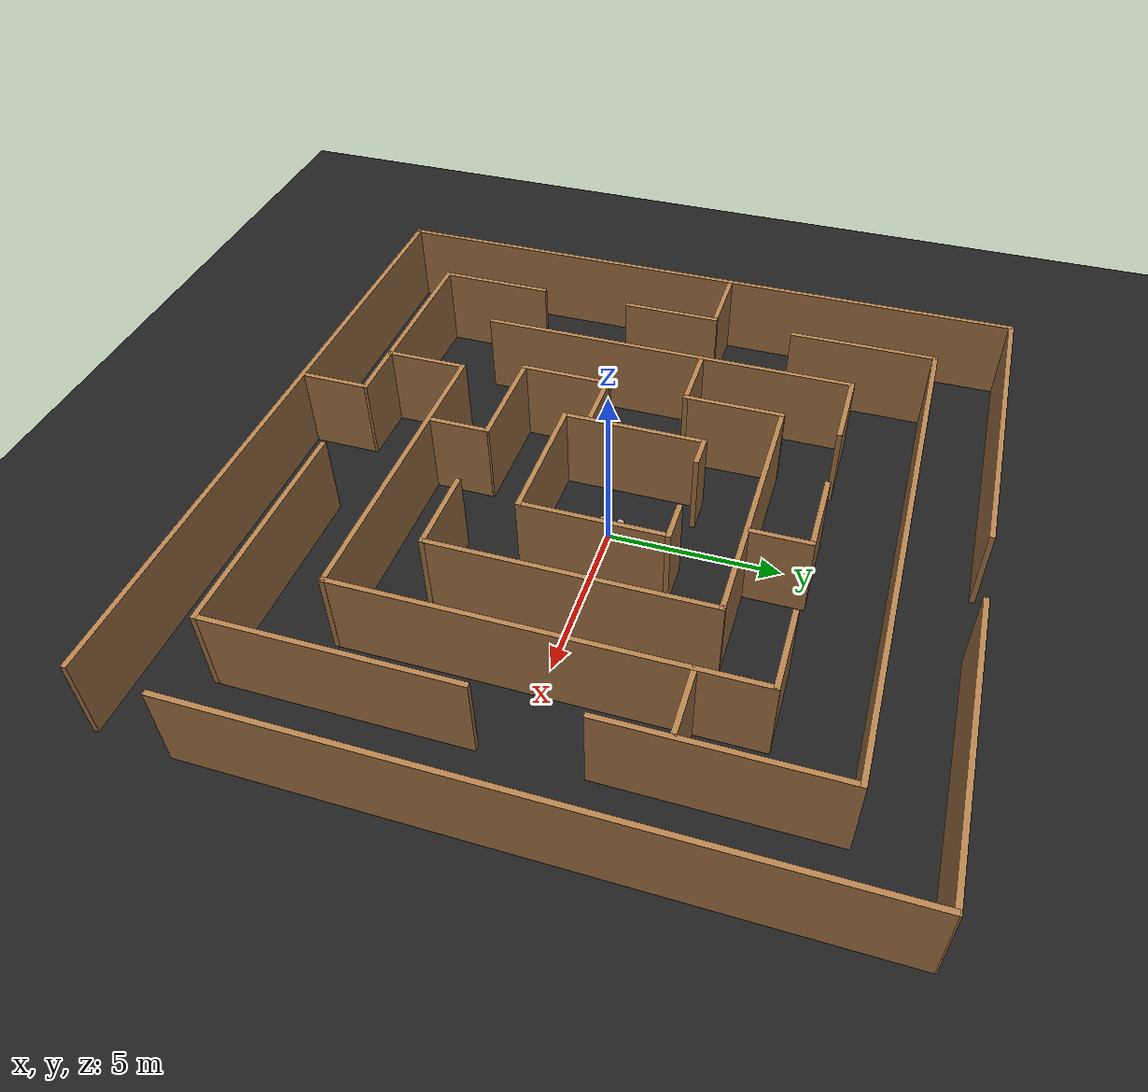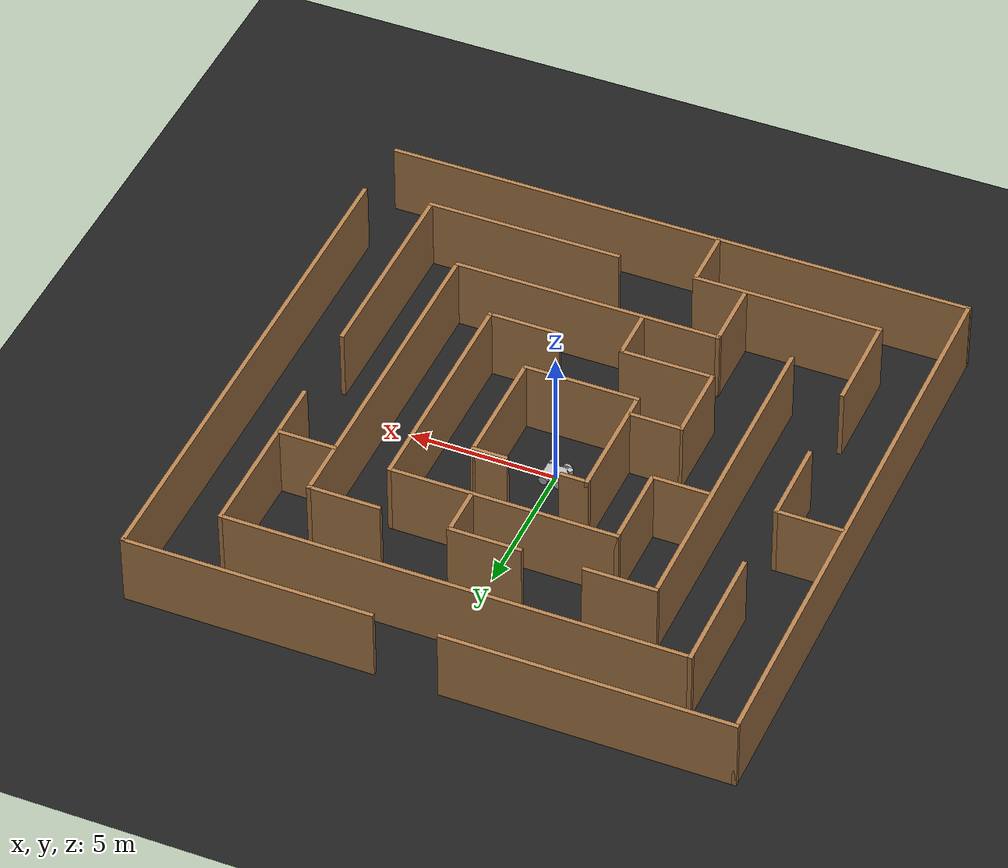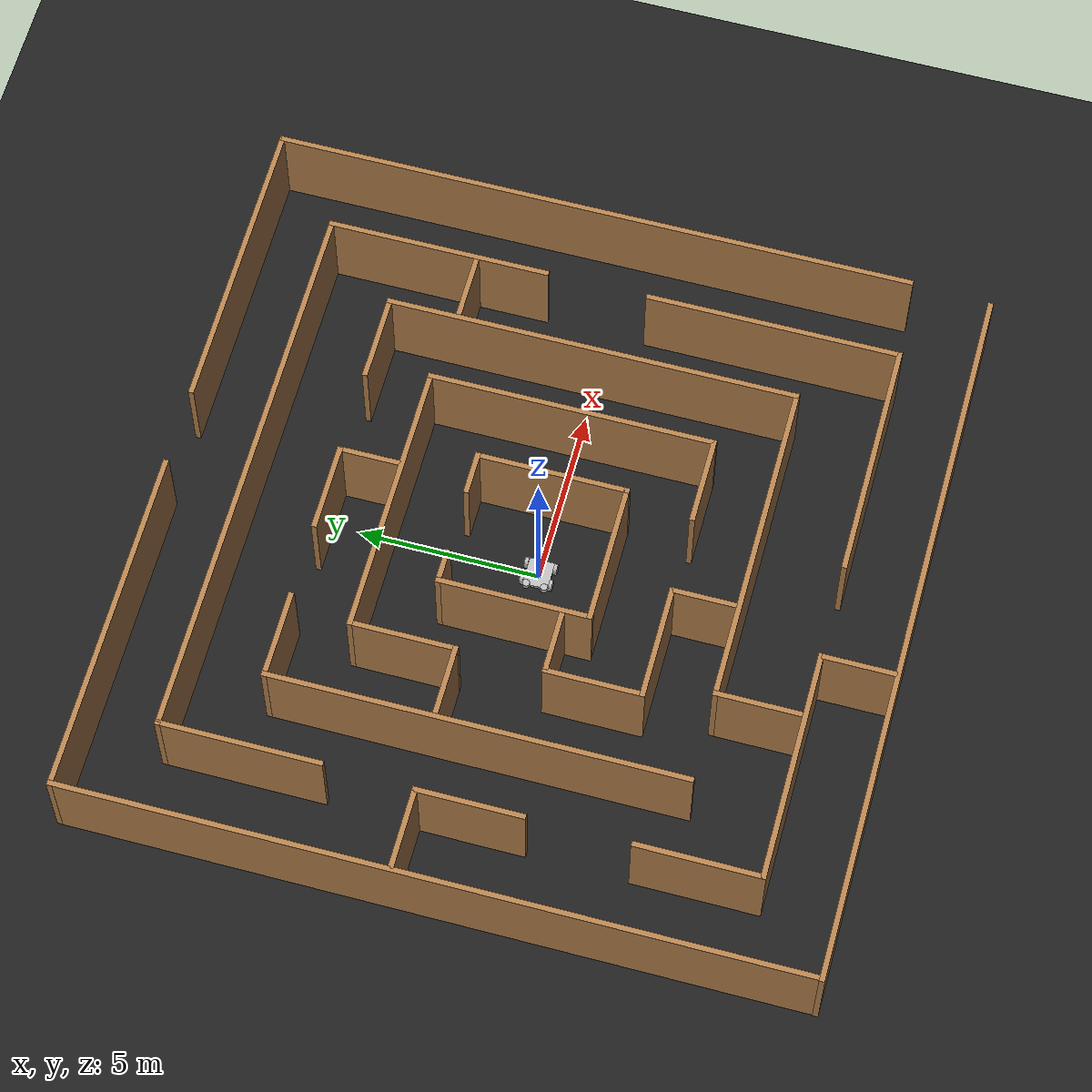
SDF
<sdf version="1.7">
 <world name="default">
  <light name="sun" type="directional">
   <pose>0 0 10 0 -0 0</pose>
   <diffuse>0.8 0.8 0.8 1</diffuse>
   <specular>0.2 0.2 0.2 1</specular>
   <attenuation>
    <range>1000</range>
    <constant>0.9</constant>
    <linear>0.01</linear>
    <quadratic>0.001</quadratic>
   </attenuation>
   <direction>-0.5 0.1 -0.9</direction>
   <spot><inner_angle>0</inner_angle><outer_angle>0</outer_angle><falloff>0</falloff></spot>
  </light>
  <model name="ground_plane">
   <static>1</static>
   <link name="link">
    <collision name="collision">
     <geometry><plane><normal>0 0 1</normal><size>10 10</size></plane></geometry>
     <surface>
      <contact><collide_bitmask>65535</collide_bitmask></contact>
      <friction><ode><mu>100</mu><mu2>50</mu2></ode></friction>
     </surface>
    </collision>
    <visual name="visual">
     <cast_shadows>0</cast_shadows>
     <geometry><plane><normal>0 0 1</normal><size>20 20</size></plane></geometry>
     <material>
      <script><uri>file://media/materials/scripts/gazebo.material</uri><name>Gazebo/Black</name></script>
     </material>
    </visual>
   </link>
  </model>
  <gravity>0 0 -9.8</gravity>
  <magnetic_field>6e-06 2.3e-05 -4.2e-05</magnetic_field>
  <atmosphere type="adiabatic"/>
  <physics type="ode">
   <max_step_size>0.001</max_step_size>
   <real_time_factor>1</real_time_factor>
   <real_time_update_rate>1000</real_time_update_rate>
  </physics>
  <scene><ambient>0.4 0.4 0.4 1</ambient><background>0.7 0.7 0.7 1</background><shadows>1</shadows></scene>
  <spherical_coordinates>
   <surface_model>EARTH_WGS84</surface_model>
   <latitude_deg>0</latitude_deg>
   <longitude_deg>0</longitude_deg>
   <elevation>0</elevation>
   <heading_deg>0</heading_deg>
  </spherical_coordinates>
  <model name="new_world.world">
   <pose>-0.01757 0.03576 0 0 -0 0</pose>
   <link name="Wall_101">
    <collision name="Wall_101_Collision">
     <geometry><box><size>2 0.15 2.5</size></box></geometry>
     <pose>0 0 1.25 0 -0 0</pose>
    </collision>
    <visual name="Wall_101_Visual">
     <pose>0 0 1.25 0 -0 0</pose>
     <geometry><box><size>2 0.15 2.5</size></box></geometry>
     <material>
      <script><uri>file://media/materials/scripts/gazebo.material</uri><name>Gazebo/Wood</name></script>
      <ambient>1 1 1 1</ambient>
     </material>
     <meta><layer>0</layer></meta>
    </visual>
    <pose>6.80976 3.82073 0 0 -0 0</pose>
   </link>
   <link name="Wall_11">
    <collision name="Wall_11_Collision">
     <geometry><box><size>6.5 0.15 2.5</size></box></geometry>
     <pose>0 0 1.25 0 -0 0</pose>
    </collision>
    <visual name="Wall_11_Visual">
     <pose>0 0 1.25 0 -0 0</pose>
     <geometry><box><size>6.5 0.15 2.5</size></box></geometry>
     <material>
      <script><uri>file://media/materials/scripts/gazebo.material</uri><name>Gazebo/Wood</name></script>
      <ambient>1 1 1 1</ambient>
     </material>
     <meta><layer>0</layer></meta>
    </visual>
    <pose>-4.67764 -8.00551 0 0 -0 0</pose>
   </link>
   <link name="Wall_13">
    <collision name="Wall_13_Collision">
     <geometry><box><size>2 0.15 2.5</size></box></geometry>
     <pose>0 0 1.25 0 -0 0</pose>
    </collision>
    <visual name="Wall_13_Visual">
     <pose>0 0 1.25 0 -0 0</pose>
     <geometry><box><size>2 0.15 2.5</size></box></geometry>
     <material>
      <script><uri>file://media/materials/scripts/gazebo.material</uri><name>Gazebo/Wood</name></script>
      <ambient>1 1 1 1</ambient>
     </material>
     <meta><layer>0</layer></meta>
    </visual>
    <pose>-1.50264 -9.02101 0 0 -0 -1.5708</pose>
   </link>
   <link name="Wall_15">
    <collision name="Wall_15_Collision">
     <geometry><box><size>3.5 0.15 2.5</size></box></geometry>
     <pose>0 0 1.25 0 -0 0</pose>
    </collision>
    <visual name="Wall_15_Visual">
     <pose>0 0 1.25 0 -0 0</pose>
     <geometry><box><size>3.5 0.15 2.5</size></box></geometry>
     <material>
      <script><uri>file://media/materials/scripts/gazebo.material</uri><name>Gazebo/Wood</name></script>
      <ambient>1 1 1 1</ambient>
     </material>
     <meta><layer>0</layer></meta>
    </visual>
    <pose>-7.85264 -6.33051 0 0 -0 -1.5708</pose>
   </link>
   <link name="Wall_18">
    <collision name="Wall_18_Collision">
     <geometry><box><size>3 0.15 2.5</size></box></geometry>
     <pose>0 0 1.25 0 -0 0</pose>
    </collision>
    <visual name="Wall_18_Visual">
     <pose>0 0 1.25 0 -0 0</pose>
     <geometry><box><size>3 0.15 2.5</size></box></geometry>
     <material>
      <script><uri>file://media/materials/scripts/gazebo.material</uri><name>Gazebo/Wood</name></script>
      <ambient>1 1 1 1</ambient>
     </material>
     <meta><layer>0</layer></meta>
    </visual>
    <pose>-7.85264 -0.330506 0 0 -0 -1.5708</pose>
   </link>
   <link name="Wall_20">
    <collision name="Wall_20_Collision">
     <geometry><box><size>2.25 0.15 2.5</size></box></geometry>
     <pose>0 0 1.25 0 -0 0</pose>
    </collision>
    <visual name="Wall_20_Visual">
     <pose>0 0 1.25 0 -0 0</pose>
     <geometry><box><size>2.25 0.15 2.5</size></box></geometry>
     <material>
      <script><uri>file://media/materials/scripts/gazebo.material</uri><name>Gazebo/Wood</name></script>
      <ambient>1 1 1 1</ambient>
     </material>
     <meta><layer>0</layer></meta>
    </visual>
    <pose>-8.95542 1.09449 0 0 -0 3.14159</pose>
   </link>
   <link name="Wall_24">
    <collision name="Wall_24_Collision">
     <geometry><box><size>15.75 0.15 2.5</size></box></geometry>
     <pose>0 0 1.25 0 -0 0</pose>
    </collision>
    <visual name="Wall_24_Visual">
     <pose>0 0 1.25 0 -0 0</pose>
     <geometry><box><size>15.75 0.15 2.5</size></box></geometry>
     <material>
      <script><uri>file://media/materials/scripts/gazebo.material</uri><name>Gazebo/Wood</name></script>
      <ambient>1 1 1 1</ambient>
     </material>
     <meta><layer>0</layer></meta>
    </visual>
    <pose>0.018026 7.97046 0 0 -0 0</pose>
   </link>
   <link name="Wall_27">
    <collision name="Wall_27_Collision">
     <geometry><box><size>4.5 0.15 2.5</size></box></geometry>
     <pose>0 0 1.25 0 -0 0</pose>
    </collision>
    <visual name="Wall_27_Visual">
     <pose>0 0 1.25 0 -0 0</pose>
     <geometry><box><size>4.5 0.15 2.5</size></box></geometry>
     <material>
      <script><uri>file://media/materials/scripts/gazebo.material</uri><name>Gazebo/Wood</name></script>
      <ambient>1 1 1 1</ambient>
     </material>
     <meta><layer>0</layer></meta>
    </visual>
    <pose>-7.78197 5.79546 0 0 -0 -1.5708</pose>
   </link>
   <link name="Wall_31">
    <collision name="Wall_31_Collision">
     <geometry><box><size>6.25 0.15 2.5</size></box></geometry>
     <pose>0 0 1.25 0 -0 0</pose>
    </collision>
    <visual name="Wall_31_Visual">
     <pose>0 0 1.25 0 -0 0</pose>
     <geometry><box><size>6.25 0.15 2.5</size></box></geometry>
     <material>
      <script><uri>file://media/materials/scripts/gazebo.material</uri><name>Gazebo/Wood</name></script>
      <ambient>1 1 1 1</ambient>
     </material>
     <meta><layer>0</layer></meta>
    </visual>
    <pose>7.81803 4.92046 0 0 -0 -1.5708</pose>
   </link>
   <link name="Wall_33">
    <collision name="Wall_33_Collision">
     <geometry><box><size>6.75 0.15 2.5</size></box></geometry>
     <pose>0 0 1.25 0 -0 0</pose>
    </collision>
    <visual name="Wall_33_Visual">
     <pose>0 0 1.25 0 -0 0</pose>
     <geometry><box><size>6.75 0.15 2.5</size></box></geometry>
     <material>
      <script><uri>file://media/materials/scripts/gazebo.material</uri><name>Gazebo/Wood</name></script>
      <ambient>1 1 1 1</ambient>
     </material>
     <meta><layer>0</layer></meta>
    </visual>
    <pose>4.51809 -8.00583 0 0 -0 0</pose>
   </link>
   <link name="Wall_35">
    <collision name="Wall_35_Collision">
     <geometry><box><size>7 0.15 2.5</size></box></geometry>
     <pose>0 0 1.25 0 -0 0</pose>
    </collision>
    <visual name="Wall_35_Visual">
     <pose>0 0 1.25 0 -0 0</pose>
     <geometry><box><size>7 0.15 2.5</size></box></geometry>
     <material>
      <script><uri>file://media/materials/scripts/gazebo.material</uri><name>Gazebo/Wood</name></script>
      <ambient>1 1 1 1</ambient>
     </material>
     <meta><layer>0</layer></meta>
    </visual>
    <pose>7.81808 -4.45465 0 0 -0 -1.5708</pose>
   </link>
   <link name="Wall_37">
    <collision name="Wall_37_Collision">
     <geometry><box><size>11.5 0.15 2.5</size></box></geometry>
     <pose>0 0 1.25 0 -0 0</pose>
    </collision>
    <visual name="Wall_37_Visual">
     <pose>0 0 1.25 0 -0 0</pose>
     <geometry><box><size>11.5 0.15 2.5</size></box></geometry>
     <material>
      <script><uri>file://media/materials/scripts/gazebo.material</uri><name>Gazebo/Wood</name></script>
      <ambient>1 1 1 1</ambient>
     </material>
     <meta><layer>0</layer></meta>
    </visual>
    <pose>-5.75079 0.065393 0 0 -0 -1.5708</pose>
   </link>
   <link name="Wall_4">
    <collision name="Wall_4_Collision">
     <geometry><box><size>20.25 0.15 2.5</size></box></geometry>
     <pose>0 0 1.25 0 -0 0</pose>
    </collision>
    <visual name="Wall_4_Visual">
     <pose>0 0 1.25 0 -0 0</pose>
     <geometry><box><size>20.25 0.15 2.5</size></box></geometry>
     <material>
      <script><uri>file://media/materials/scripts/gazebo.material</uri><name>Gazebo/Wood</name></script>
      <ambient>1 1 1 1</ambient>
     </material>
     <meta><layer>0</layer></meta>
    </visual>
    <pose>-0.072822 -10.05 0 0 -0 0</pose>
   </link>
   <link name="Wall_43">
    <collision name="Wall_43_Collision">
     <geometry><box><size>11.5 0.15 2.5</size></box></geometry>
     <pose>0 0 1.25 0 -0 0</pose>
    </collision>
    <visual name="Wall_43_Visual">
     <pose>0 0 1.25 0 -0 0</pose>
     <geometry><box><size>11.5 0.15 2.5</size></box></geometry>
     <material>
      <script><uri>file://media/materials/scripts/gazebo.material</uri><name>Gazebo/Wood</name></script>
      <ambient>1 1 1 1</ambient>
     </material>
     <meta><layer>0</layer></meta>
    </visual>
    <pose>5.84921 0.065393 0 0 -0 -1.5708</pose>
   </link>
   <link name="Wall_45">
    <collision name="Wall_45_Collision">
     <geometry><box><size>2.5 0.15 2.5</size></box></geometry>
     <pose>0 0 1.25 0 -0 0</pose>
    </collision>
    <visual name="Wall_45_Visual">
     <pose>0 0 1.25 0 -0 0</pose>
     <geometry><box><size>2.5 0.15 2.5</size></box></geometry>
     <material>
      <script><uri>file://media/materials/scripts/gazebo.material</uri><name>Gazebo/Wood</name></script>
      <ambient>1 1 1 1</ambient>
     </material>
     <meta><layer>0</layer></meta>
    </visual>
    <pose>-4.57579 5.7404 0 0 -0 0</pose>
   </link>
   <link name="Wall_47">
    <collision name="Wall_47_Collision">
     <geometry><box><size>2.5 0.15 2.5</size></box></geometry>
     <pose>0 0 1.25 0 -0 0</pose>
    </collision>
    <visual name="Wall_47_Visual">
     <pose>0 0 1.25 0 -0 0</pose>
     <geometry><box><size>2.5 0.15 2.5</size></box></geometry>
     <material>
      <script><uri>file://media/materials/scripts/gazebo.material</uri><name>Gazebo/Wood</name></script>
      <ambient>1 1 1 1</ambient>
     </material>
     <meta><layer>0</layer></meta>
    </visual>
    <pose>4.67421 5.74039 0 0 -0 0</pose>
   </link>
   <link name="Wall_49">
    <collision name="Wall_49_Collision">
     <geometry><box><size>2.5 0.15 2.5</size></box></geometry>
     <pose>0 0 1.25 0 -0 0</pose>
    </collision>
    <visual name="Wall_49_Visual">
     <pose>0 0 1.25 0 -0 0</pose>
     <geometry><box><size>2.5 0.15 2.5</size></box></geometry>
     <material>
      <script><uri>file://media/materials/scripts/gazebo.material</uri><name>Gazebo/Wood</name></script>
      <ambient>1 1 1 1</ambient>
     </material>
     <meta><layer>0</layer></meta>
    </visual>
    <pose>-0.07579 5.7404 0 0 -0 0</pose>
   </link>
   <link name="Wall_51">
    <collision name="Wall_51_Collision">
     <geometry><box><size>7.80201 0.15 2.5</size></box></geometry>
     <pose>0 0 1.25 0 -0 0</pose>
    </collision>
    <visual name="Wall_51_Visual">
     <pose>0 0 1.25 0 -0 0</pose>
     <geometry><box><size>7.80201 0.15 2.5</size></box></geometry>
     <material>
      <script><uri>file://media/materials/scripts/gazebo.material</uri><name>Gazebo/Wood</name></script>
      <ambient>1 1 1 1</ambient>
     </material>
     <meta><layer>0</layer></meta>
    </visual>
    <pose>0.06263 4.02839 0 0 -0 0</pose>
   </link>
   <link name="Wall_54">
    <collision name="Wall_54_Collision">
     <geometry><box><size>3 0.15 2.5</size></box></geometry>
     <pose>0 0 1.25 0 -0 0</pose>
    </collision>
    <visual name="Wall_54_Visual">
     <pose>0 0 1.25 0 -0 0</pose>
     <geometry><box><size>3 0.15 2.5</size></box></geometry>
     <material>
      <script><uri>file://media/materials/scripts/gazebo.material</uri><name>Gazebo/Wood</name></script>
      <ambient>1 1 1 1</ambient>
     </material>
     <meta><layer>0</layer></meta>
    </visual>
    <pose>-3.76338 2.60339 0 0 -0 -1.5708</pose>
   </link>
   <link name="Wall_58">
    <collision name="Wall_58_Collision">
     <geometry><box><size>2.75 0.15 2.5</size></box></geometry>
     <pose>0 0 1.25 0 -0 0</pose>
    </collision>
    <visual name="Wall_58_Visual">
     <pose>0 0 1.25 0 -0 0</pose>
     <geometry><box><size>2.75 0.15 2.5</size></box></geometry>
     <material>
      <script><uri>file://media/materials/scripts/gazebo.material</uri><name>Gazebo/Wood</name></script>
      <ambient>1 1 1 1</ambient>
     </material>
     <meta><layer>0</layer></meta>
    </visual>
    <pose>-3.76338 -2.52161 0 0 -0 -1.5708</pose>
   </link>
   <link name="Wall_60">
    <collision name="Wall_60_Collision">
     <geometry><box><size>3.25 0.15 2.5</size></box></geometry>
     <pose>0 0 1.25 0 -0 0</pose>
    </collision>
    <visual name="Wall_60_Visual">
     <pose>0 0 1.25 0 -0 0</pose>
     <geometry><box><size>3.25 0.15 2.5</size></box></geometry>
     <material>
      <script><uri>file://media/materials/scripts/gazebo.material</uri><name>Gazebo/Wood</name></script>
      <ambient>1 1 1 1</ambient>
     </material>
     <meta><layer>0</layer></meta>
    </visual>
    <pose>-2.21338 -3.82161 0 0 -0 0</pose>
   </link>
   <link name="Wall_70">
    <collision name="Wall_70_Collision">
     <geometry><box><size>8 0.15 2.5</size></box></geometry>
     <pose>0 0 1.25 0 -0 0</pose>
    </collision>
    <visual name="Wall_70_Visual">
     <pose>0 0 1.25 0 -0 0</pose>
     <geometry><box><size>8 0.15 2.5</size></box></geometry>
     <material>
      <script><uri>file://media/materials/scripts/gazebo.material</uri><name>Gazebo/Wood</name></script>
      <ambient>1 1 1 1</ambient>
     </material>
     <meta><layer>0</layer></meta>
    </visual>
    <pose>3.88864 0.103395 0 0 -0 -1.5708</pose>
   </link>
   <link name="Wall_72">
    <collision name="Wall_72_Collision">
     <geometry><box><size>2.5 0.15 2.5</size></box></geometry>
     <pose>0 0 1.25 0 -0 0</pose>
    </collision>
    <visual name="Wall_72_Visual">
     <pose>0 0 1.25 0 -0 0</pose>
     <geometry><box><size>2.5 0.15 2.5</size></box></geometry>
     <material>
      <script><uri>file://media/materials/scripts/gazebo.material</uri><name>Gazebo/Wood</name></script>
      <ambient>1 1 1 1</ambient>
     </material>
     <meta><layer>0</layer></meta>
    </visual>
    <pose>2.71364 -3.8216 0 0 -0 3.14159</pose>
   </link>
   <link name="Wall_74">
    <collision name="Wall_74_Collision">
     <geometry><box><size>1 0.15 2.5</size></box></geometry>
     <pose>0 0 1.25 0 -0 0</pose>
    </collision>
    <visual name="Wall_74_Visual">
     <pose>0 0 1.25 0 -0 0</pose>
     <geometry><box><size>1 0.15 2.5</size></box></geometry>
     <material>
      <script><uri>file://media/materials/scripts/gazebo.material</uri><name>Gazebo/Wood</name></script>
      <ambient>1 1 1 1</ambient>
     </material>
     <meta><layer>0</layer></meta>
    </visual>
    <pose>-1.54789 2.15322 0 0 -0 0</pose>
   </link>
   <link name="Wall_78">
    <collision name="Wall_78_Collision">
     <geometry><box><size>4.25 0.15 2.5</size></box></geometry>
     <pose>0 0 1.25 0 -0 0</pose>
    </collision>
    <visual name="Wall_78_Visual">
     <pose>0 0 1.25 0 -0 0</pose>
     <geometry><box><size>4.25 0.15 2.5</size></box></geometry>
     <material>
      <script><uri>file://media/materials/scripts/gazebo.material</uri><name>Gazebo/Wood</name></script>
      <ambient>1 1 1 1</ambient>
     </material>
     <meta><layer>0</layer></meta>
    </visual>
    <pose>-1.97289 0.103218 0 0 -0 -1.5708</pose>
   </link>
   <link name="Wall_80">
    <collision name="Wall_80_Collision">
     <geometry><box><size>4 0.15 2.5</size></box></geometry>
     <pose>0 0 1.25 0 -0 0</pose>
    </collision>
    <visual name="Wall_80_Visual">
     <pose>0 0 1.25 0 -0 0</pose>
     <geometry><box><size>4 0.15 2.5</size></box></geometry>
     <material>
      <script><uri>file://media/materials/scripts/gazebo.material</uri><name>Gazebo/Wood</name></script>
      <ambient>1 1 1 1</ambient>
     </material>
     <meta><layer>0</layer></meta>
    </visual>
    <pose>-0.047894 -1.94678 0 0 -0 0</pose>
   </link>
   <link name="Wall_82">
    <collision name="Wall_82_Collision">
     <geometry><box><size>4.25 0.15 2.5</size></box></geometry>
     <pose>0 0 1.25 0 -0 0</pose>
    </collision>
    <visual name="Wall_82_Visual">
     <pose>0 0 1.25 0 -0 0</pose>
     <geometry><box><size>4.25 0.15 2.5</size></box></geometry>
     <material>
      <script><uri>file://media/materials/scripts/gazebo.material</uri><name>Gazebo/Wood</name></script>
      <ambient>1 1 1 1</ambient>
     </material>
     <meta><layer>0</layer></meta>
    </visual>
    <pose>1.87711 0.103218 0 0 -0 1.5708</pose>
   </link>
   <link name="Wall_84">
    <collision name="Wall_84_Collision">
     <geometry><box><size>1.25 0.15 2.5</size></box></geometry>
     <pose>0 0 1.25 0 -0 0</pose>
    </collision>
    <visual name="Wall_84_Visual">
     <pose>0 0 1.25 0 -0 0</pose>
     <geometry><box><size>1.25 0.15 2.5</size></box></geometry>
     <material>
      <script><uri>file://media/materials/scripts/gazebo.material</uri><name>Gazebo/Wood</name></script>
      <ambient>1 1 1 1</ambient>
     </material>
     <meta><layer>0</layer></meta>
    </visual>
    <pose>1.32711 2.15322 0 0 -0 3.14159</pose>
   </link>
   <link name="Wall_88">
    <collision name="Wall_88_Collision">
     <geometry><box><size>1.75 0.15 2.5</size></box></geometry>
     <pose>0 0 1.25 0 -0 0</pose>
    </collision>
    <visual name="Wall_88_Visual">
     <pose>0 0 1.25 0 -0 0</pose>
     <geometry><box><size>1.75 0.15 2.5</size></box></geometry>
     <material>
      <script><uri>file://media/materials/scripts/gazebo.material</uri><name>Gazebo/Wood</name></script>
      <ambient>1 1 1 1</ambient>
     </material>
     <meta><layer>0</layer></meta>
    </visual>
    <pose>1.09921 4.94039 0 0 -0 -1.5708</pose>
   </link>
   <link name="Wall_9">
    <collision name="Wall_9_Collision">
     <geometry><box><size>18 0.15 2.5</size></box></geometry>
     <pose>0 0 1.25 0 -0 0</pose>
    </collision>
    <visual name="Wall_9_Visual">
     <pose>0 0 1.25 0 -0 0</pose>
     <geometry><box><size>18 0.15 2.5</size></box></geometry>
     <material>
      <script><uri>file://media/materials/scripts/gazebo.material</uri><name>Gazebo/Wood</name></script>
      <ambient>1 1 1 1</ambient>
     </material>
     <meta><layer>0</layer></meta>
    </visual>
    <pose>10.1228 1.12502 0 0 -0 -1.5708</pose>
   </link>
   <link name="Wall_94">
    <collision name="Wall_94_Collision">
     <geometry><box><size>1.75 0.15 2.5</size></box></geometry>
     <pose>0 0 1.25 0 -0 0</pose>
    </collision>
    <visual name="Wall_94_Visual">
     <pose>0 0 1.25 0 -0 0</pose>
     <geometry><box><size>1.75 0.15 2.5</size></box></geometry>
     <material>
      <script><uri>file://media/materials/scripts/gazebo.material</uri><name>Gazebo/Wood</name></script>
      <ambient>1 1 1 1</ambient>
     </material>
     <meta><layer>0</layer></meta>
    </visual>
    <pose>-2.86724 -1.22161 0 0 -0 0</pose>
   </link>
   <link name="Wall_96">
    <collision name="Wall_96_Collision">
     <geometry><box><size>2 0.15 2.5</size></box></geometry>
     <pose>0 0 1.25 0 -0 0</pose>
    </collision>
    <visual name="Wall_96_Visual">
     <pose>0 0 1.25 0 -0 0</pose>
     <geometry><box><size>2 0.15 2.5</size></box></geometry>
     <material>
      <script><uri>file://media/materials/scripts/gazebo.material</uri><name>Gazebo/Wood</name></script>
      <ambient>1 1 1 1</ambient>
     </material>
     <meta><layer>0</layer></meta>
    </visual>
    <pose>-4.68838 1.1784 0 0 -0 3.14159</pose>
   </link>
   <static>1</static>
  </model>
  <model name="Untitled"><pose>-3.49795 1.28767 0 0 -0 0</pose><static>1</static></model>
  <model name="robot">
   <link name="base_footprint">
    <inertial>
     <pose>0 0 0.135 0 -0 0</pose>
     <mass>0.5</mass>
     <inertia><ixx>0.0415</ixx><ixy>0</ixy><ixz>0</ixz><iyy>0.0415</iyy><iyz>0</iyz><izz>0.0415</izz></inertia>
    </inertial>
    <collision name="base_footprint_fixed_joint_lump__base_link_collision">
     <pose>0 0 0.135 0 -0 0</pose>
     <geometry><box><size>0.8 0.7 0.1</size></box></geometry>
    </collision>
    <collision name="base_footprint_fixed_joint_lump__headlight_left_link_collision_1">
     <pose>-0.4 0.25 0.185 0 -0 0</pose>
     <geometry><cylinder><length>0.15</length><radius>0.1</radius></cylinder></geometry>
    </collision>
    <collision name="base_footprint_fixed_joint_lump__headlight_right_link_collision_2">
     <pose>-0.4 -0.25 0.185 0 -0 0</pose>
     <geometry><cylinder><length>0.15</length><radius>0.1</radius></cylinder></geometry>
    </collision>
    <visual name="base_footprint_fixed_joint_lump__base_link_visual">
     <pose>0 0 0.135 0 -0 0</pose>
     <geometry><box><size>0.8 0.7 0.1</size></box></geometry>
    </visual>
    <visual name="base_footprint_fixed_joint_lump__headlight_left_link_visual_1">
     <pose>-0.4 0.25 0.185 0 -0 0</pose>
     <geometry><cylinder><length>0.15</length><radius>0.1</radius></cylinder></geometry>
    </visual>
    <visual name="base_footprint_fixed_joint_lump__headlight_right_link_visual_2">
     <pose>-0.4 -0.25 0.185 0 -0 0</pose>
     <geometry><cylinder><length>0.15</length><radius>0.1</radius></cylinder></geometry>
    </visual>
   </link>
   <joint name="wheel_front_left_joint" type="revolute">
    <pose relative_to="base_footprint">-0.25 -0.4 0.135 0 -0 0</pose>
    <parent>base_footprint</parent>
    <child>wheel_front_left_link</child>
    <axis>
     <xyz>0 1 0</xyz>
     <limit><effort>1000</effort><velocity>100</velocity><lower>-1e+16</lower><upper>1e+16</upper></limit>
     <dynamics>
      <damping>1</damping>
      <friction>1</friction>
      <spring_reference>0</spring_reference>
      <spring_stiffness>0</spring_stiffness>
     </dynamics>
    </axis>
   </joint>
   <link name="wheel_front_left_link">
    <pose relative_to="wheel_front_left_joint">0 0 0 0 -0 0</pose>
    <inertial>
     <mass>0.25</mass>
     <inertia><ixx>0.01125</ixx><ixy>0</ixy><ixz>0</ixz><iyy>0.01125</iyy><iyz>0</iyz><izz>0.01125</izz></inertia>
    </inertial>
    <collision name="wheel_front_left_link_collision">
     <pose>0 0 0 1.57 -0 0</pose>
     <geometry><cylinder><length>0.1</length><radius>0.15</radius></cylinder></geometry>
    </collision>
    <visual name="wheel_front_left_link_fixed_joint_lump__wheel_front_left_visual_visual">
     <pose>0 0 0 1.57 -0 0</pose>
     <geometry><cylinder><length>0.1</length><radius>0.15</radius></cylinder></geometry>
    </visual>
   </link>
   <joint name="wheel_front_right_joint" type="revolute">
    <pose relative_to="base_footprint">-0.25 0.4 0.135 0 -0 0</pose>
    <parent>base_footprint</parent>
    <child>wheel_front_right_link</child>
    <axis>
     <xyz>0 1 0</xyz>
     <limit><effort>1000</effort><velocity>100</velocity><lower>-1e+16</lower><upper>1e+16</upper></limit>
     <dynamics>
      <damping>1</damping>
      <friction>1</friction>
      <spring_reference>0</spring_reference>
      <spring_stiffness>0</spring_stiffness>
     </dynamics>
    </axis>
   </joint>
   <link name="wheel_front_right_link">
    <pose relative_to="wheel_front_right_joint">0 0 0 0 -0 0</pose>
    <inertial>
     <mass>0.25</mass>
     <inertia><ixx>0.01125</ixx><ixy>0</ixy><ixz>0</ixz><iyy>0.01125</iyy><iyz>0</iyz><izz>0.01125</izz></inertia>
    </inertial>
    <collision name="wheel_front_right_link_collision">
     <pose>0 0 0 1.57 -0 0</pose>
     <geometry><cylinder><length>0.1</length><radius>0.15</radius></cylinder></geometry>
    </collision>
    <visual name="wheel_front_right_link_fixed_joint_lump__wheel_front_right_visual_visual">
     <pose>0 0 0 1.57 -0 0</pose>
     <geometry><cylinder><length>0.1</length><radius>0.15</radius></cylinder></geometry>
    </visual>
   </link>
   <joint name="wheel_rear_left_joint" type="revolute">
    <pose relative_to="base_footprint">0.25 -0.4 0.135 0 -0 0</pose>
    <parent>base_footprint</parent>
    <child>wheel_rear_left_link</child>
    <axis>
     <xyz>0 1 0</xyz>
     <limit><effort>1000</effort><velocity>100</velocity><lower>-1e+16</lower><upper>1e+16</upper></limit>
     <dynamics>
      <damping>1</damping>
      <friction>1</friction>
      <spring_reference>0</spring_reference>
      <spring_stiffness>0</spring_stiffness>
     </dynamics>
    </axis>
   </joint>
   <link name="wheel_rear_left_link">
    <pose relative_to="wheel_rear_left_joint">0 0 0 0 -0 0</pose>
    <inertial>
     <mass>0.25</mass>
     <inertia><ixx>0.01125</ixx><ixy>0</ixy><ixz>0</ixz><iyy>0.01125</iyy><iyz>0</iyz><izz>0.01125</izz></inertia>
    </inertial>
    <collision name="wheel_rear_left_link_collision">
     <pose>0 0 0 1.57 -0 0</pose>
     <geometry><cylinder><length>0.1</length><radius>0.15</radius></cylinder></geometry>
    </collision>
    <visual name="wheel_rear_left_link_fixed_joint_lump__wheel_rear_left_visual_visual">
     <pose>0 0 0 1.57 -0 0</pose>
     <geometry><cylinder><length>0.1</length><radius>0.15</radius></cylinder></geometry>
    </visual>
   </link>
   <joint name="wheel_rear_right_joint" type="revolute">
    <pose relative_to="base_footprint">0.25 0.4 0.135 0 -0 0</pose>
    <parent>base_footprint</parent>
    <child>wheel_rear_right_link</child>
    <axis>
     <xyz>0 1 0</xyz>
     <limit><effort>1000</effort><velocity>100</velocity><lower>-1e+16</lower><upper>1e+16</upper></limit>
     <dynamics>
      <damping>1</damping>
      <friction>1</friction>
      <spring_reference>0</spring_reference>
      <spring_stiffness>0</spring_stiffness>
     </dynamics>
    </axis>
   </joint>
   <link name="wheel_rear_right_link">
    <pose relative_to="wheel_rear_right_joint">0 0 0 0 -0 0</pose>
    <inertial>
     <mass>0.25</mass>
     <inertia><ixx>0.01125</ixx><ixy>0</ixy><ixz>0</ixz><iyy>0.01125</iyy><iyz>0</iyz><izz>0.01125</izz></inertia>
    </inertial>
    <collision name="wheel_rear_right_link_collision">
     <pose>0 0 0 1.57 -0 0</pose>
     <geometry><cylinder><length>0.1</length><radius>0.15</radius></cylinder></geometry>
    </collision>
    <visual name="wheel_rear_right_link_fixed_joint_lump__wheel_rear_right_visual_visual">
     <pose>0 0 0 1.57 -0 0</pose>
     <geometry><cylinder><length>0.1</length><radius>0.15</radius></cylinder></geometry>
    </visual>
   </link>
   <plugin name="differential_drive_controller" filename="libgazebo_ros_diff_drive.so">
    <legacyMode>0</legacyMode>
    <alwaysOn>1</alwaysOn>
    <updateRate>10</updateRate>
    <leftJoint>left_wheel_hinge</leftJoint>
    <rightJoint>right_wheel_hinge</rightJoint>
    <wheelSeparation>0.4</wheelSeparation>
    <wheelDiameter>0.2</wheelDiameter>
    <torque>10</torque>
    <commandTopic>cmd_vel</commandTopic>
    <odometryTopic>odom</odometryTopic>
    <odometryFrame>odom</odometryFrame>
    <robotBaseFrame>robot_footprint</robotBaseFrame>
    <publishWheelTF>0</publishWheelTF>
    <publishWheelJointState>0</publishWheelJointState>
    <rosDebugLevel>na</rosDebugLevel>
    <wheelAcceleration>0</wheelAcceleration>
    <wheelTorque>10</wheelTorque>
    <odometrySource>world</odometrySource>
    <publishTf>1</publishTf>
    <publishOdomTF>1</publishOdomTF>
    <robotNamespace>/</robotNamespace>
   </plugin>
   <static>0</static>
   <plugin name="skid_steer_drive_controller" filename="libgazebo_ros_skid_steer_drive.so">
    <updateRate>100.0</updateRate>
    <robotNamespace>/</robotNamespace>
    <leftFrontJoint>wheel_front_left_joint</leftFrontJoint>
    <rightFrontJoint>wheel_front_right_joint</rightFrontJoint>
    <leftRearJoint>wheel_rear_left_joint</leftRearJoint>
    <rightRearJoint>wheel_rear_right_joint</rightRearJoint>
    <wheelSeparation>0.8</wheelSeparation>
    <wheelDiameter>0.3</wheelDiameter>
    <robotBaseFrame>base_footprint</robotBaseFrame>
    <torque>10</torque>
    <topicName>cmd_vel</topicName>
    <odometryTopic>odom</odometryTopic>
    <odometryFrame>odom</odometryFrame>
    <commandTopic>cmd_vel</commandTopic>
    <topic_name_twist>cmd_vel</topic_name_twist>
    <topic_name_odometry>odom</topic_name_odometry>
    <topic_name_joint>joint</topic_name_joint>
    <broadcastTF>1</broadcastTF>
    <covariance_x>0.0001</covariance_x>
    <covariance_y>0.0001</covariance_y>
    <covariance_yaw>0.01</covariance_yaw>
   </plugin>
   <pose>-3e-06 2e-06 0.01504 0 -0 -1e-06</pose>
  </model>
  <model name="Untitled_0">
   <pose>-0.012099 0.085588 0 0 -0 0</pose>
   <link name="Wall_0">
    <collision name="Wall_0_Collision">
     <geometry><box><size>20.25 0.15 2.5</size></box></geometry>
     <pose>0 0 1.25 0 -0 0</pose>
    </collision>
    <visual name="Wall_0_Visual">
     <pose>0 0 1.25 0 -0 0</pose>
     <geometry><box><size>20.25 0.15 2.5</size></box></geometry>
     <material>
      <script><uri>file://media/materials/scripts/gazebo.material</uri><name>Gazebo/Wood</name></script>
      <ambient>1 1 1 1</ambient>
     </material>
     <meta><layer>0</layer></meta>
    </visual>
    <pose>-10.1141 0 0 0 -0 -1.5708</pose>
   </link>
   <link name="Wall_10">
    <collision name="Wall_10_Collision">
     <geometry><box><size>2.5 0.15 2.5</size></box></geometry>
     <pose>0 0 1.25 0 -0 0</pose>
    </collision>
    <visual name="Wall_10_Visual">
     <pose>0 0 1.25 0 -0 0</pose>
     <geometry><box><size>2.5 0.15 2.5</size></box></geometry>
     <material>
      <script><uri>file://media/materials/scripts/gazebo.material</uri><name>Gazebo/Wood</name></script>
      <ambient>1 1 1 1</ambient>
     </material>
     <meta><layer>0</layer></meta>
    </visual>
    <pose>-3.25152 -6.84895 0 0 -0 -1.5708</pose>
   </link>
   <link name="Wall_12">
    <collision name="Wall_12_Collision">
     <geometry><box><size>1.75 0.15 2.5</size></box></geometry>
     <pose>0 0 1.25 0 -0 0</pose>
    </collision>
    <visual name="Wall_12_Visual">
     <pose>0 0 1.25 0 -0 0</pose>
     <geometry><box><size>1.75 0.15 2.5</size></box></geometry>
     <material>
      <script><uri>file://media/materials/scripts/gazebo.material</uri><name>Gazebo/Wood</name></script>
      <ambient>1 1 1 1</ambient>
     </material>
     <meta><layer>0</layer></meta>
    </visual>
    <pose>-0.666497 -4.73272 0 0 -0 -1.5708</pose>
   </link>
   <link name="Wall_2">
    <collision name="Wall_2_Collision">
     <geometry><box><size>9.75 0.15 2.5</size></box></geometry>
     <pose>0 0 1.25 0 -0 0</pose>
    </collision>
    <visual name="Wall_2_Visual">
     <pose>0 0 1.25 0 -0 0</pose>
     <geometry><box><size>9.75 0.15 2.5</size></box></geometry>
     <material>
      <script><uri>file://media/materials/scripts/gazebo.material</uri><name>Gazebo/Wood</name></script>
      <ambient>1 1 1 1</ambient>
     </material>
     <meta><layer>0</layer></meta>
    </visual>
    <pose>-5.31413 10.05 0 0 -0 0</pose>
   </link>
   <link name="Wall_4">
    <collision name="Wall_4_Collision">
     <geometry><box><size>8.5 0.15 2.5</size></box></geometry>
     <pose>0 0 1.25 0 -0 0</pose>
    </collision>
    <visual name="Wall_4_Visual">
     <pose>0 0 1.25 0 -0 0</pose>
     <geometry><box><size>8.5 0.15 2.5</size></box></geometry>
     <material>
      <script><uri>file://media/materials/scripts/gazebo.material</uri><name>Gazebo/Wood</name></script>
      <ambient>1 1 1 1</ambient>
     </material>
     <meta><layer>0</layer></meta>
    </visual>
    <pose>5.93913 10.0413 0 0 -0 0</pose>
   </link>
   <link name="Wall_8">
    <collision name="Wall_8_Collision">
     <geometry><box><size>9.25 0.15 2.5</size></box></geometry>
     <pose>0 0 1.25 0 -0 0</pose>
    </collision>
    <visual name="Wall_8_Visual">
     <pose>0 0 1.25 0 -0 0</pose>
     <geometry><box><size>9.25 0.15 2.5</size></box></geometry>
     <material>
      <script><uri>file://media/materials/scripts/gazebo.material</uri><name>Gazebo/Wood</name></script>
      <ambient>1 1 1 1</ambient>
     </material>
     <meta><layer>0</layer></meta>
    </visual>
    <pose>1.29848 -5.67395 0 0 -0 0</pose>
   </link>
   <static>1</static>
  </model>
 </world>
</sdf>
